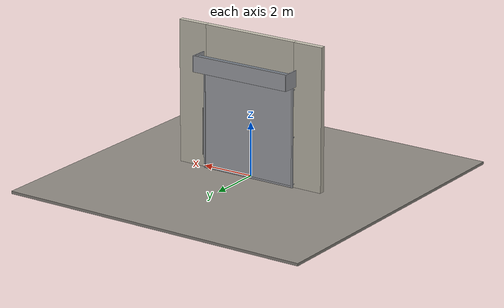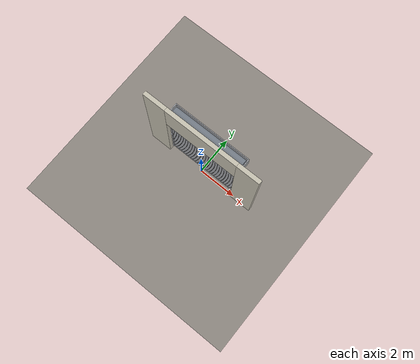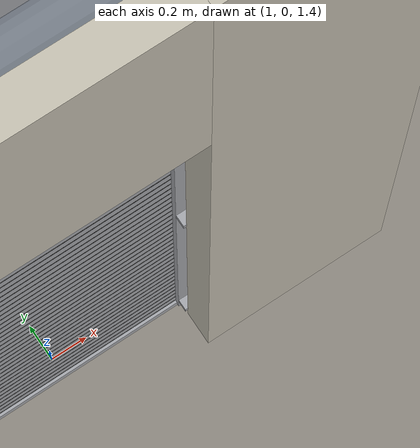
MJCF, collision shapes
<?xml version="1.0" ?>
<mujoco model="db0888_rollup_full">
  <compiler angle="radian" meshdir="../../hardware" texturedir="../../textures" autolimits="true" inertiafromgeom="false"/>
  <option timestep="0.002" integrator="implicitfast" cone="elliptic" impratio="10" noslip_iterations="3">
    <flag multiccd="enable"/>
  </option>
  <size memory="16M"/>
  <default>
    <geom condim="4" solref="0.005 1" solimp="0.95 0.99 0.001"/>
    <joint solreflimit="0.005 1" solimplimit="0.95 0.99 0.001"/>
    <tendon solreflimit="0.005 1"/>
    <equality solref="0.002 1"/>
  </default>
  <visual>
    <headlight ambient="0.4 0.4 0.4" diffuse="0.7 0.7 0.7" specular="0.2 0.2 0.2"/>
    <quality shadowsize="4096"/>
    <map znear="0.01" zfar="60"/>
  </visual>
  <asset>
    <mesh name="pull_bdc5e965ab" file="pull_bdc5e965ab.obj"/>
    <material name="mat_floor" rgba="0.55 0.53 0.5 1" specular="0.2" shininess="0.15" reflectance="0"/>
    <material name="mat_wall" rgba="0.78 0.76 0.7 1" specular="0.2" shininess="0.1" reflectance="0"/>
    <material name="mat_frame" rgba="0.45 0.48 0.52 1" specular="0.32" shininess="0.6" reflectance="0.08"/>
    <material name="mat_track" rgba="0.65 0.66 0.68 1" specular="0.74" shininess="0.5" reflectance="0.36"/>
    <material name="mat_curtain" rgba="0.65 0.66 0.68 1" specular="0.74" shininess="0.5" reflectance="0.36"/>
    <material name="mat_slat_line" rgba="0.25 0.25 0.25 1" specular="0.2" shininess="0.3" reflectance="0"/>
    <material name="mat_astragal" rgba="0.09 0.09 0.1 1" specular="0.2" shininess="0.1" reflectance="0"/>
    <material name="mat_chain" rgba="0.55 0.56 0.58 1" specular="0.8" shininess="0.55" reflectance="0.4"/>
    <material name="mat_op_black_matte_metal" rgba="0.05 0.05 0.05 1" specular="0.38" shininess="0.3" reflectance="0.12"/>
    <texture name="skybox" type="skybox" builtin="gradient" rgb1="0.6 0.7 0.85" rgb2="0.9 0.92 0.95" width="256" height="256"/>
  </asset>
  <worldbody>
    <light name="sun" pos="1.5 -2.5 4" dir="-0.3 0.5 -0.8" directional="true" diffuse="0.8 0.8 0.8" specular="0.3 0.3 0.3" castshadow="true"/>
    <light name="fill" pos="-1.5 2.5 3" dir="0.3 -0.5 -0.7" directional="true" diffuse="0.35 0.35 0.4" castshadow="false"/>
    <camera name="robot_view" pos="0 -4.103125 3.003875" xyaxes="1 0 0 0 0.26963 0.962964" fovy="52"/>
    <camera name="far_view" pos="0 4.103125 3.003875" xyaxes="-1 0 0 0 -0.26963 0.962964" fovy="52"/>
    <camera name="iso" pos="3.118375 -3.446625 3.660375" xyaxes="0.741536 0.670913 0 -0.242917 0.268487 0.932151" fovy="46"/>
    <camera name="detail_handle" pos="0.25 -0.9665 0.51" xyaxes="0.975133 0.221621 0 -0.065674 0.288965 0.955084" fovy="38"/>
    <geom name="floor" type="box" size="6 6 0.05" pos="0 0 -0.05" material="mat_floor" group="0" contype="1" conaffinity="1" friction="0.8 0.005 0.0001" density="2400"/>
    <geom name="wall_left" type="box" size="0.5725 0.1 2.655" pos="-2.4275 0 2.655" material="mat_wall" group="0" contype="1" conaffinity="1" friction="0.6 0.005 0.0001" density="800"/>
    <geom name="wall_right" type="box" size="0.5725 0.1 2.655" pos="2.4275 0 2.655" material="mat_wall" group="0" contype="1" conaffinity="1" friction="0.6 0.005 0.0001" density="800"/>
    <geom name="wall_header" type="box" size="1.855 0.1 0.8" pos="0 0 4.51" material="mat_wall" group="0" contype="1" conaffinity="1" friction="0.6 0.005 0.0001" density="800"/>
    <geom name="guide_l" type="box" size="0.03 0.025 1.855" pos="-1.865 0.185 1.855" material="mat_track" group="0" contype="1" conaffinity="1" friction="0.6 0.005 0.0001" density="7850"/>
    <geom name="guide_r" type="box" size="0.03 0.025 1.855" pos="1.865 0.185 1.855" material="mat_track" group="0" contype="1" conaffinity="1" friction="0.6 0.005 0.0001" density="7850"/>
    <geom name="guide_bracket_l_0" type="box" size="0.028 0.034 0.02" pos="-1.865 0.13 0.12" material="mat_track" group="1" contype="0" conaffinity="0" density="7850"/>
    <geom name="guide_bracket_l_1" type="box" size="0.028 0.034 0.02" pos="-1.865 0.13 1.855" material="mat_track" group="1" contype="0" conaffinity="0" density="7850"/>
    <geom name="guide_bracket_l_2" type="box" size="0.028 0.034 0.02" pos="-1.865 0.13 3.59" material="mat_track" group="1" contype="0" conaffinity="0" density="7850"/>
    <geom name="guide_bracket_r_0" type="box" size="0.028 0.034 0.02" pos="1.865 0.13 0.12" material="mat_track" group="1" contype="0" conaffinity="0" density="7850"/>
    <geom name="guide_bracket_r_1" type="box" size="0.028 0.034 0.02" pos="1.865 0.13 1.855" material="mat_track" group="1" contype="0" conaffinity="0" density="7850"/>
    <geom name="guide_bracket_r_2" type="box" size="0.028 0.034 0.02" pos="1.865 0.13 3.59" material="mat_track" group="1" contype="0" conaffinity="0" density="7850"/>
    <geom name="coil_drum" type="cylinder" size="0.25 1.88" pos="0 0.463 4.01" quat="0.707107 0 0.707107 0" material="mat_frame" group="1" contype="0" conaffinity="0" density="300"/>
    <geom name="coil_shaft" type="cylinder" size="0.022 1.96" pos="0 0.463 4.01" quat="0.707107 0 0.707107 0" material="mat_track" group="1" contype="0" conaffinity="0" density="7850"/>
    <geom name="hood_front" type="box" size="1.95 0.02 0.3" pos="0 0.725 4.01" material="mat_track" group="1" contype="0" conaffinity="0" density="7850"/>
    <geom name="hood_end_l" type="box" size="0.02 0.3225 0.3" pos="-1.95 0.4225 4.01" material="mat_track" group="1" contype="0" conaffinity="0" density="7850"/>
    <geom name="hood_end_r" type="box" size="0.02 0.3225 0.3" pos="1.95 0.4225 4.01" material="mat_track" group="1" contype="0" conaffinity="0" density="7850"/>
    <geom name="hoist_chain" type="cylinder" size="0.005 2.155" pos="1.95 0.185 2.155" material="mat_chain" group="0" contype="1" conaffinity="1" friction="0.6 0.005 0.0001" density="7850"/>
    <site name="approach_point" pos="0 -2 0" quat="1 0 0 0" size="0.05" rgba="0.2 0.9 0.2 0.5" group="4"/>
    <site name="goal_point" pos="0 2 0" quat="1 0 0 0" size="0.05" rgba="0.2 0.9 0.2 0.5" group="4"/>
    <site name="door_plane_center" pos="0 0 1.855" quat="1 0 0 0" size="0.02" rgba="0.2 0.9 0.2 0.5" group="4"/>
    <body name="curtain" pos="0 0 0">
      <inertial pos="0 0.184778 1.606064" mass="84.624368" quat="0.50006 0.49994 0.49994 -0.50006" diaginertia="93.977879663 113.109461007 207.08362666"/>
      <joint name="curtain_slide" type="slide" axis="0 0 1" limited="true" range="0 3.61" damping="6.231218" frictionloss="132.781049" stiffness="62.089907" springref="12.033333" armature="0.5"/>
      <geom name="curtain_slab" type="box" size="1.83 0.0015 1.83" pos="0 0.185 1.84" material="mat_curtain" group="0" contype="1" conaffinity="1" friction="0.42 0.005 0.0001" density="1"/>
      <geom name="slat_line_1" type="box" size="1.83 0.001 0.003" pos="0 0.1825 0.08625" material="mat_slat_line" group="1" contype="0" conaffinity="0" density="1"/>
      <geom name="slat_line_2" type="box" size="1.83 0.001 0.003" pos="0 0.1825 0.1625" material="mat_slat_line" group="1" contype="0" conaffinity="0" density="1"/>
      <geom name="slat_line_3" type="box" size="1.83 0.001 0.003" pos="0 0.1825 0.23875" material="mat_slat_line" group="1" contype="0" conaffinity="0" density="1"/>
      <geom name="slat_line_4" type="box" size="1.83 0.001 0.003" pos="0 0.1825 0.315" material="mat_slat_line" group="1" contype="0" conaffinity="0" density="1"/>
      <geom name="slat_line_5" type="box" size="1.83 0.001 0.003" pos="0 0.1825 0.39125" material="mat_slat_line" group="1" contype="0" conaffinity="0" density="1"/>
      <geom name="slat_line_6" type="box" size="1.83 0.001 0.003" pos="0 0.1825 0.4675" material="mat_slat_line" group="1" contype="0" conaffinity="0" density="1"/>
      <geom name="slat_line_7" type="box" size="1.83 0.001 0.003" pos="0 0.1825 0.54375" material="mat_slat_line" group="1" contype="0" conaffinity="0" density="1"/>
      <geom name="slat_line_8" type="box" size="1.83 0.001 0.003" pos="0 0.1825 0.62" material="mat_slat_line" group="1" contype="0" conaffinity="0" density="1"/>
      <geom name="slat_line_9" type="box" size="1.83 0.001 0.003" pos="0 0.1825 0.69625" material="mat_slat_line" group="1" contype="0" conaffinity="0" density="1"/>
      <geom name="slat_line_10" type="box" size="1.83 0.001 0.003" pos="0 0.1825 0.7725" material="mat_slat_line" group="1" contype="0" conaffinity="0" density="1"/>
      <geom name="slat_line_11" type="box" size="1.83 0.001 0.003" pos="0 0.1825 0.84875" material="mat_slat_line" group="1" contype="0" conaffinity="0" density="1"/>
      <geom name="slat_line_12" type="box" size="1.83 0.001 0.003" pos="0 0.1825 0.925" material="mat_slat_line" group="1" contype="0" conaffinity="0" density="1"/>
      <geom name="slat_line_13" type="box" size="1.83 0.001 0.003" pos="0 0.1825 1.00125" material="mat_slat_line" group="1" contype="0" conaffinity="0" density="1"/>
      <geom name="slat_line_14" type="box" size="1.83 0.001 0.003" pos="0 0.1825 1.0775" material="mat_slat_line" group="1" contype="0" conaffinity="0" density="1"/>
      <geom name="slat_line_15" type="box" size="1.83 0.001 0.003" pos="0 0.1825 1.15375" material="mat_slat_line" group="1" contype="0" conaffinity="0" density="1"/>
      <geom name="slat_line_16" type="box" size="1.83 0.001 0.003" pos="0 0.1825 1.23" material="mat_slat_line" group="1" contype="0" conaffinity="0" density="1"/>
      <geom name="slat_line_17" type="box" size="1.83 0.001 0.003" pos="0 0.1825 1.30625" material="mat_slat_line" group="1" contype="0" conaffinity="0" density="1"/>
      <geom name="slat_line_18" type="box" size="1.83 0.001 0.003" pos="0 0.1825 1.3825" material="mat_slat_line" group="1" contype="0" conaffinity="0" density="1"/>
      <geom name="slat_line_19" type="box" size="1.83 0.001 0.003" pos="0 0.1825 1.45875" material="mat_slat_line" group="1" contype="0" conaffinity="0" density="1"/>
      <geom name="slat_line_20" type="box" size="1.83 0.001 0.003" pos="0 0.1825 1.535" material="mat_slat_line" group="1" contype="0" conaffinity="0" density="1"/>
      <geom name="slat_line_21" type="box" size="1.83 0.001 0.003" pos="0 0.1825 1.61125" material="mat_slat_line" group="1" contype="0" conaffinity="0" density="1"/>
      <geom name="slat_line_22" type="box" size="1.83 0.001 0.003" pos="0 0.1825 1.6875" material="mat_slat_line" group="1" contype="0" conaffinity="0" density="1"/>
      <geom name="slat_line_23" type="box" size="1.83 0.001 0.003" pos="0 0.1825 1.76375" material="mat_slat_line" group="1" contype="0" conaffinity="0" density="1"/>
      <geom name="slat_line_24" type="box" size="1.83 0.001 0.003" pos="0 0.1825 1.84" material="mat_slat_line" group="1" contype="0" conaffinity="0" density="1"/>
      <geom name="slat_line_25" type="box" size="1.83 0.001 0.003" pos="0 0.1825 1.91625" material="mat_slat_line" group="1" contype="0" conaffinity="0" density="1"/>
      <geom name="slat_line_26" type="box" size="1.83 0.001 0.003" pos="0 0.1825 1.9925" material="mat_slat_line" group="1" contype="0" conaffinity="0" density="1"/>
      <geom name="slat_line_27" type="box" size="1.83 0.001 0.003" pos="0 0.1825 2.06875" material="mat_slat_line" group="1" contype="0" conaffinity="0" density="1"/>
      <geom name="slat_line_28" type="box" size="1.83 0.001 0.003" pos="0 0.1825 2.145" material="mat_slat_line" group="1" contype="0" conaffinity="0" density="1"/>
      <geom name="slat_line_29" type="box" size="1.83 0.001 0.003" pos="0 0.1825 2.22125" material="mat_slat_line" group="1" contype="0" conaffinity="0" density="1"/>
      <geom name="slat_line_30" type="box" size="1.83 0.001 0.003" pos="0 0.1825 2.2975" material="mat_slat_line" group="1" contype="0" conaffinity="0" density="1"/>
      <geom name="slat_line_31" type="box" size="1.83 0.001 0.003" pos="0 0.1825 2.37375" material="mat_slat_line" group="1" contype="0" conaffinity="0" density="1"/>
      <geom name="slat_line_32" type="box" size="1.83 0.001 0.003" pos="0 0.1825 2.45" material="mat_slat_line" group="1" contype="0" conaffinity="0" density="1"/>
      <geom name="slat_line_33" type="box" size="1.83 0.001 0.003" pos="0 0.1825 2.52625" material="mat_slat_line" group="1" contype="0" conaffinity="0" density="1"/>
      <geom name="slat_line_34" type="box" size="1.83 0.001 0.003" pos="0 0.1825 2.6025" material="mat_slat_line" group="1" contype="0" conaffinity="0" density="1"/>
      <geom name="slat_line_35" type="box" size="1.83 0.001 0.003" pos="0 0.1825 2.67875" material="mat_slat_line" group="1" contype="0" conaffinity="0" density="1"/>
      <geom name="slat_line_36" type="box" size="1.83 0.001 0.003" pos="0 0.1825 2.755" material="mat_slat_line" group="1" contype="0" conaffinity="0" density="1"/>
      <geom name="slat_line_37" type="box" size="1.83 0.001 0.003" pos="0 0.1825 2.83125" material="mat_slat_line" group="1" contype="0" conaffinity="0" density="1"/>
      <geom name="slat_line_38" type="box" size="1.83 0.001 0.003" pos="0 0.1825 2.9075" material="mat_slat_line" group="1" contype="0" conaffinity="0" density="1"/>
      <geom name="slat_line_39" type="box" size="1.83 0.001 0.003" pos="0 0.1825 2.98375" material="mat_slat_line" group="1" contype="0" conaffinity="0" density="1"/>
      <geom name="slat_line_40" type="box" size="1.83 0.001 0.003" pos="0 0.1825 3.06" material="mat_slat_line" group="1" contype="0" conaffinity="0" density="1"/>
      <geom name="slat_line_41" type="box" size="1.83 0.001 0.003" pos="0 0.1825 3.13625" material="mat_slat_line" group="1" contype="0" conaffinity="0" density="1"/>
      <geom name="slat_line_42" type="box" size="1.83 0.001 0.003" pos="0 0.1825 3.2125" material="mat_slat_line" group="1" contype="0" conaffinity="0" density="1"/>
      <geom name="slat_line_43" type="box" size="1.83 0.001 0.003" pos="0 0.1825 3.28875" material="mat_slat_line" group="1" contype="0" conaffinity="0" density="1"/>
      <geom name="slat_line_44" type="box" size="1.83 0.001 0.003" pos="0 0.1825 3.365" material="mat_slat_line" group="1" contype="0" conaffinity="0" density="1"/>
      <geom name="slat_line_45" type="box" size="1.83 0.001 0.003" pos="0 0.1825 3.44125" material="mat_slat_line" group="1" contype="0" conaffinity="0" density="1"/>
      <geom name="slat_line_46" type="box" size="1.83 0.001 0.003" pos="0 0.1825 3.5175" material="mat_slat_line" group="1" contype="0" conaffinity="0" density="1"/>
      <geom name="slat_line_47" type="box" size="1.83 0.001 0.003" pos="0 0.1825 3.59375" material="mat_slat_line" group="1" contype="0" conaffinity="0" density="1"/>
      <geom name="bottom_bar" type="box" size="1.83 0.0165 0.03" pos="0 0.185 0.042" material="mat_track" group="0" contype="1" conaffinity="1" friction="0.6 0.005 0.0001" density="7850"/>
      <geom name="bottom_astragal" type="box" size="1.83 0.0115 0.006" pos="0 0.185 0.006" material="mat_astragal" group="0" contype="1" conaffinity="1" friction="0.6 0.005 0.0001" density="1100"/>
      <geom name="lift_handle_n" type="mesh" mesh="pull_bdc5e965ab" pos="0 0.1835 0.16" quat="0.707107 0.707107 0 0" material="mat_op_black_matte_metal" group="1" contype="0" conaffinity="0" density="3000"/>
      <geom name="lift_handle_col_n" type="box" size="0.1 0.006 0.015" pos="0 0.1335 0.16" material="mat_op_black_matte_metal" group="3" contype="1" conaffinity="1" rgba="0.8 0.3 0.3 0.25" friction="0.6 0.005 0.0001" density="3000"/>
      <site name="lift_handle_grip_n" pos="0 0.1335 0.16" quat="1 0 0 0" size="0.012" rgba="0.2 0.9 0.2 0.5" group="4"/>
    </body>
  </worldbody>
  <sensor>
    <jointpos name="curtain_slide_pos" joint="curtain_slide"/>
    <jointvel name="curtain_slide_vel" joint="curtain_slide"/>
  </sensor>
</mujoco>
